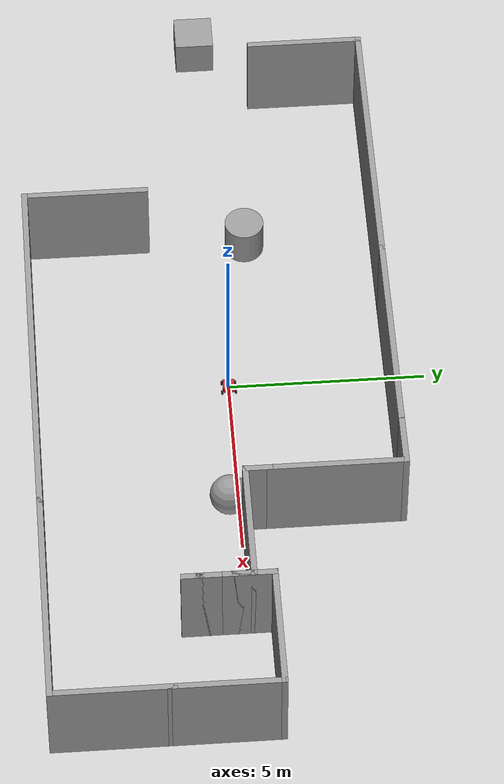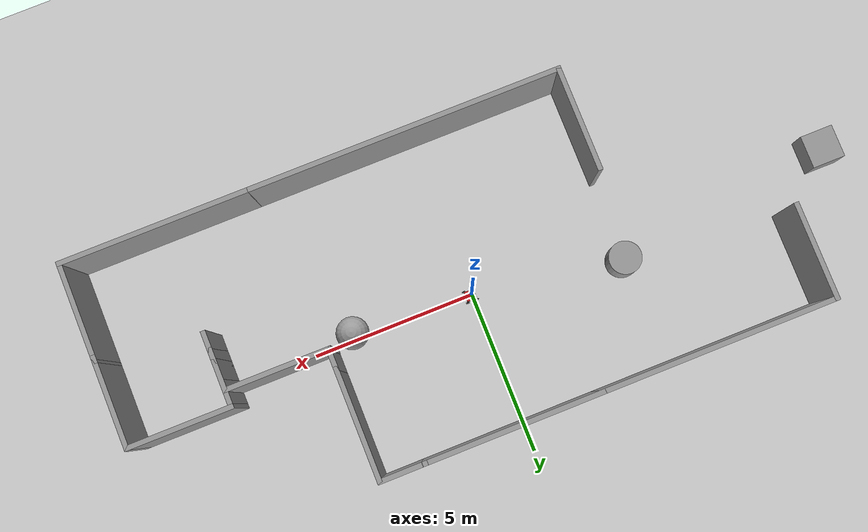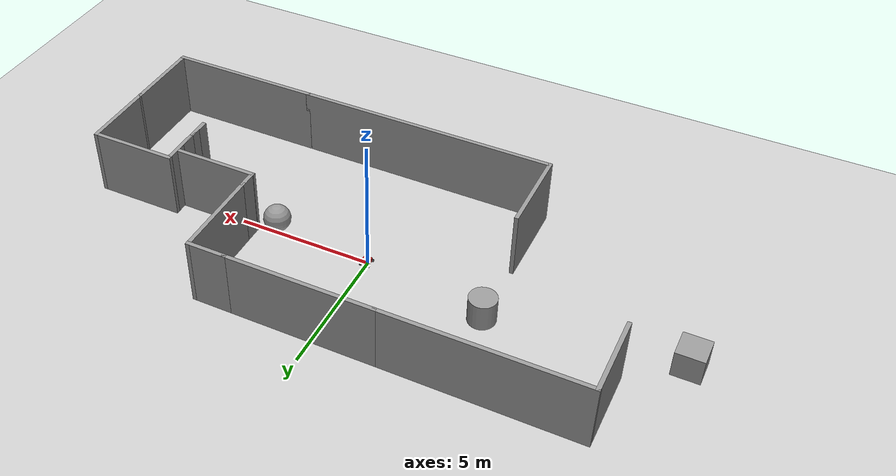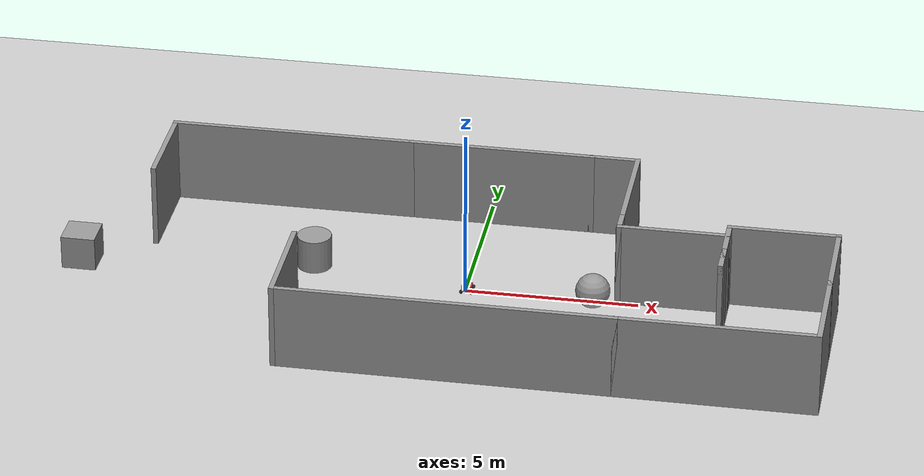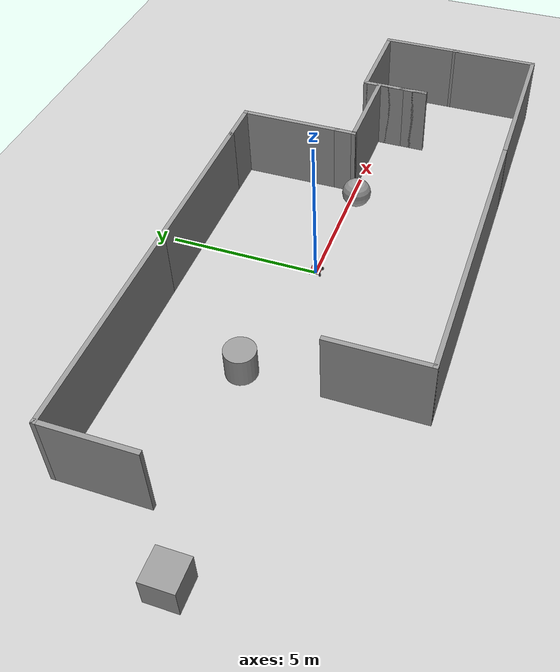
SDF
<sdf version="1.7">
 <world name="default">
  <light name="sun" type="directional">
   <pose>0 0 10 0 -0 0</pose>
   <diffuse>0.8 0.8 0.8 1</diffuse>
   <specular>0.2 0.2 0.2 1</specular>
   <attenuation>
    <range>1000</range>
    <constant>0.9</constant>
    <linear>0.01</linear>
    <quadratic>0.001</quadratic>
   </attenuation>
   <direction>-0.5 0.1 -0.9</direction>
   <spot><inner_angle>0</inner_angle><outer_angle>0</outer_angle><falloff>0</falloff></spot>
  </light>
  <model name="ground_plane">
   <static>1</static>
   <link name="link">
    <collision name="collision">
     <geometry><plane><normal>0 0 1</normal><size>100 100</size></plane></geometry>
     <surface>
      <contact><collide_bitmask>65535</collide_bitmask></contact>
      <friction><ode><mu>100</mu><mu2>50</mu2></ode></friction>
     </surface>
    </collision>
    <visual name="visual">
     <cast_shadows>0</cast_shadows>
     <geometry><plane><normal>0 0 1</normal><size>100 100</size></plane></geometry>
     <material>
      <script><uri>file://media/materials/scripts/gazebo.material</uri><name>Gazebo/Grey</name></script>
     </material>
    </visual>
   </link>
  </model>
  <gravity>0 0 -9.8</gravity>
  <magnetic_field>6e-06 2.3e-05 -4.2e-05</magnetic_field>
  <atmosphere type="adiabatic"/>
  <physics type="ode">
   <max_step_size>0.001</max_step_size>
   <real_time_factor>1</real_time_factor>
   <real_time_update_rate>1000</real_time_update_rate>
  </physics>
  <scene><ambient>0.4 0.4 0.4 1</ambient><background>0.7 0.7 0.7 1</background><shadows>1</shadows></scene>
  <audio><device>default</device></audio>
  <spherical_coordinates>
   <surface_model>EARTH_WGS84</surface_model>
   <latitude_deg>0</latitude_deg>
   <longitude_deg>0</longitude_deg>
   <elevation>0</elevation>
   <heading_deg>0</heading_deg>
  </spherical_coordinates>
  <model name="BOTX">
   <link name="base_link">
    <inertial>
     <pose>0.08125 0 0.06875 0 -0 0</pose>
     <mass>0.8</mass>
     <inertia>
      <ixx>0.0131337</ixx>
      <ixy>0</ixy>
      <ixz>0.00259375</ixz>
      <iyy>0.0110758</iyy>
      <iyz>-1.39278e-20</iyz>
      <izz>0.0178704</izz>
     </inertia>
    </inertial>
    <collision name="base_link_fixed_joint_lump__chassis_collision">
     <pose>0.05 0 0.075 0 -0 0</pose>
     <geometry><box><size>0.3 0.3 0.15</size></box></geometry>
    </collision>
    <collision name="base_link_fixed_joint_lump__laser_frame_collision_1">
     <pose>0 0 0.175 0 -0 0</pose>
     <geometry><cylinder><length>0.04</length><radius>0.05</radius></cylinder></geometry>
    </collision>
    <collision name="base_link_fixed_joint_lump__l1_collision_2">
     <pose>0.2 0.175 0 -1.5708 0 0</pose>
     <geometry><cylinder><length>0.04</length><radius>0.05</radius></cylinder></geometry>
     <surface><friction><ode><mu>0.001</mu><mu2>0.001</mu2></ode></friction></surface>
    </collision>
    <collision name="base_link_fixed_joint_lump__r1_collision_3">
     <pose>0.2 -0.175 0 1.5708 -0 0</pose>
     <geometry><cylinder><length>0.04</length><radius>0.05</radius></cylinder></geometry>
     <surface><friction><ode><mu>0.001</mu><mu2>0.001</mu2></ode></friction></surface>
    </collision>
    <visual name="base_link_fixed_joint_lump__chassis_visual">
     <pose>0.05 0 0.075 0 -0 0</pose>
     <geometry><box><size>0.3 0.3 0.15</size></box></geometry>
     <material>
      <script><name>Gazebo/Red</name><uri>file://media/materials/scripts/gazebo.material</uri></script>
     </material>
    </visual>
    <visual name="base_link_fixed_joint_lump__camera_link_visual_1">
     <pose>0.205 0 0.08 0 -0 0</pose>
     <geometry><box><size>0.01 0.03 0.03</size></box></geometry>
     <material>
      <script><name>Gazebo/Blue</name><uri>file://media/materials/scripts/gazebo.material</uri></script>
     </material>
    </visual>
    <visual name="base_link_fixed_joint_lump__laser_frame_visual_2">
     <pose>0 0 0.175 0 -0 0</pose>
     <geometry><cylinder><length>0.04</length><radius>0.05</radius></cylinder></geometry>
     <material>
      <script><name>Gazebo/Red</name><uri>file://media/materials/scripts/gazebo.material</uri></script>
     </material>
    </visual>
    <visual name="base_link_fixed_joint_lump__l1_visual_3">
     <pose>0.2 0.175 0 -1.5708 0 0</pose>
     <geometry><cylinder><length>0.04</length><radius>0.05</radius></cylinder></geometry>
     <material>
      <script><name>Gazebo/Black</name><uri>file://media/materials/scripts/gazebo.material</uri></script>
     </material>
    </visual>
    <visual name="base_link_fixed_joint_lump__r1_visual_4">
     <pose>0.2 -0.175 0 1.5708 -0 0</pose>
     <geometry><cylinder><length>0.04</length><radius>0.05</radius></cylinder></geometry>
     <material>
      <script><name>Gazebo/Black</name><uri>file://media/materials/scripts/gazebo.material</uri></script>
     </material>
    </visual>
    <sensor name="camera" type="depth">
     <visualize>1</visualize>
     <update_rate>10</update_rate>
     <camera>
      <horizontal_fov>1.089</horizontal_fov>
      <image><format>B8R8G8</format><width>640</width><height>480</height></image>
      <clip><near>0.05</near><far>8</far></clip>
     </camera>
     <plugin name="camera_controller" filename="libgazebo_ros_camera.so">
      <frame_name>camera_link_optical</frame_name>
      <min_depth>0.1</min_depth>
      <max_depth>100.0</max_depth>
     </plugin>
     <pose>0.205 0 0.08 0 -0 0</pose>
    </sensor>
    <sensor name="laser" type="ray">
     <visualize>1</visualize>
     <update_rate>10</update_rate>
     <ray>
      <scan>
       <horizontal>
        <samples>360</samples>
        <min_angle>-3.14</min_angle>
        <max_angle>3.14</max_angle>
        <resolution>1</resolution>
       </horizontal>
       <vertical><samples>1</samples><min_angle>0</min_angle><max_angle>0</max_angle></vertical>
      </scan>
      <range><min>0.3</min><max>12</max></range>
     </ray>
     <plugin name="laser_controller" filename="libgazebo_ros_ray_sensor.so">
      <ros><argument>~/out:=scan</argument></ros>
      <output_type>sensor_msgs/LaserScan</output_type>
      <frame_name>laser_frame</frame_name>
     </plugin>
     <pose>0 0 0.175 0 -0 0</pose>
    </sensor>
   </link>
   <joint name="lw2" type="revolute">
    <pose relative_to="base_link">-0.1 0.175 0 1.5708 -0 0</pose>
    <parent>base_link</parent>
    <child>l2</child>
    <axis>
     <xyz>0 0 -1</xyz>
     <limit><lower>-1e+16</lower><upper>1e+16</upper></limit>
     <dynamics><spring_reference>0</spring_reference><spring_stiffness>0</spring_stiffness></dynamics>
    </axis>
   </joint>
   <link name="l2">
    <pose relative_to="lw2">0 0 0 0 -0 0</pose>
    <inertial>
     <mass>0.1</mass>
     <inertia>
      <ixx>7.58333e-05</ixx>
      <ixy>0</ixy>
      <ixz>0</ixz>
      <iyy>7.58333e-05</iyy>
      <iyz>0</iyz>
      <izz>0.000125</izz>
     </inertia>
    </inertial>
    <collision name="l2_collision">
     <geometry><cylinder><length>0.04</length><radius>0.05</radius></cylinder></geometry>
    </collision>
    <visual name="l2_visual">
     <geometry><cylinder><length>0.04</length><radius>0.05</radius></cylinder></geometry>
     <material>
      <script><name>Gazebo/Black</name><uri>file://media/materials/scripts/gazebo.material</uri></script>
     </material>
    </visual>
   </link>
   <joint name="rw2" type="revolute">
    <pose relative_to="base_link">-0.1 -0.175 0 1.5708 -0 0</pose>
    <parent>base_link</parent>
    <child>r2</child>
    <axis>
     <xyz>0 0 2</xyz>
     <limit><lower>-1e+16</lower><upper>1e+16</upper></limit>
     <dynamics><spring_reference>0</spring_reference><spring_stiffness>0</spring_stiffness></dynamics>
    </axis>
   </joint>
   <link name="r2">
    <pose relative_to="rw2">0 0 0 0 -0 0</pose>
    <inertial>
     <mass>0.1</mass>
     <inertia>
      <ixx>7.58333e-05</ixx>
      <ixy>0</ixy>
      <ixz>0</ixz>
      <iyy>7.58333e-05</iyy>
      <iyz>0</iyz>
      <izz>0.000125</izz>
     </inertia>
    </inertial>
    <collision name="r2_collision">
     <geometry><cylinder><length>0.04</length><radius>0.05</radius></cylinder></geometry>
    </collision>
    <visual name="r2_visual">
     <geometry><cylinder><length>0.04</length><radius>0.05</radius></cylinder></geometry>
     <material>
      <script><name>Gazebo/Black</name><uri>file://media/materials/scripts/gazebo.material</uri></script>
     </material>
    </visual>
   </link>
   <static>0</static>
   <plugin name="diff_drive" filename="libgazebo_ros_diff_drive.so">
    <left_joint>lw2</left_joint>
    <right_joint>rw2</right_joint>
    <wheel_seperation>0.35</wheel_seperation>
    <wheel_diameter>0.1</wheel_diameter>
    <max_wheel_torque>200</max_wheel_torque>
    <max_wheel_acceleration>10.0</max_wheel_acceleration>
    <odometry_frame>odom</odometry_frame>
    <robot_base_frame>base_link</robot_base_frame>
    <publish_odom>1</publish_odom>
    <publish_odom_tf>1</publish_odom_tf>
    <publish_wheel_tf>1</publish_wheel_tf>
   </plugin>
   <pose>-0.000544 -2.6e-05 0.05 0 1e-06 -0.001602</pose>
  </model>
  <model name="building_2">
   <pose>0.595213 -0.433653 0 0 -0 0</pose>
   <link name="Wall_0">
    <collision name="Wall_0_Collision">
     <geometry><box><size>3.25 0.15 2.5</size></box></geometry>
     <pose>0 0 1.25 0 -0 0</pose>
    </collision>
    <visual name="Wall_0_Visual">
     <pose>0 0 1.25 0 -0 0</pose>
     <geometry><box><size>3.25 0.15 2.5</size></box></geometry>
     <material>
      <script><uri>file://media/materials/scripts/gazebo.material</uri><name>Gazebo/Grey</name></script>
      <ambient>1 1 1 1</ambient>
     </material>
     <meta><layer>0</layer></meta>
    </visual>
    <pose>-5.21 -2.95 0 0 -0 -1.5708</pose>
   </link>
   <link name="Wall_1">
    <collision name="Wall_1_Collision">
     <geometry><box><size>9.75 0.15 2.5</size></box></geometry>
     <pose>0 0 1.25 0 -0 0</pose>
    </collision>
    <visual name="Wall_1_Visual">
     <pose>0 0 1.25 0 -0 0</pose>
     <geometry><box><size>9.75 0.15 2.5</size></box></geometry>
     <material>
      <script><uri>file://media/materials/scripts/gazebo.material</uri><name>Gazebo/Grey</name></script>
      <ambient>1 1 1 1</ambient>
     </material>
     <meta><layer>0</layer></meta>
    </visual>
    <pose>-0.41 -4.5 0 0 -0 0</pose>
   </link>
   <link name="Wall_10">
    <collision name="Wall_10_Collision">
     <geometry><box><size>1 0.15 2.5</size></box></geometry>
     <pose>0 0 1.25 0 -0 0</pose>
    </collision>
    <visual name="Wall_10_Visual">
     <pose>0 0 1.25 0 -0 0</pose>
     <geometry><box><size>1 0.15 2.5</size></box></geometry>
     <material>
      <script><uri>file://media/materials/scripts/gazebo.material</uri><name>Gazebo/Grey</name></script>
      <ambient>1 1 1 1</ambient>
     </material>
     <meta><layer>0</layer></meta>
    </visual>
    <pose>6.89 -0.725 0 0 -0 1.5708</pose>
   </link>
   <link name="Wall_11">
    <collision name="Wall_11_Collision">
     <geometry><box><size>1 0.15 2.5</size></box></geometry>
     <pose>0 0 1.25 0 -0 0</pose>
    </collision>
    <visual name="Wall_11_Visual">
     <pose>0 0 1.25 0 -0 0</pose>
     <geometry><box><size>1 0.15 2.5</size></box></geometry>
     <material>
      <script><uri>file://media/materials/scripts/gazebo.material</uri><name>Gazebo/Grey</name></script>
      <ambient>1 1 1 1</ambient>
     </material>
     <meta><layer>0</layer></meta>
    </visual>
    <pose>6.89 0.125 0 0 -0 1.5708</pose>
   </link>
   <link name="Wall_12">
    <collision name="Wall_12_Collision">
     <geometry><box><size>3.25 0.15 2.5</size></box></geometry>
     <pose>0 0 1.25 0 -0 0</pose>
    </collision>
    <visual name="Wall_12_Visual">
     <pose>0 0 1.25 0 -0 0</pose>
     <geometry><box><size>3.25 0.15 2.5</size></box></geometry>
     <material>
      <script><uri>file://media/materials/scripts/gazebo.material</uri><name>Gazebo/Grey</name></script>
      <ambient>1 1 1 1</ambient>
     </material>
     <meta><layer>0</layer></meta>
    </visual>
    <pose>5.34 0.55 0 0 -0 3.14159</pose>
   </link>
   <link name="Wall_13">
    <collision name="Wall_13_Collision">
     <geometry><box><size>0.16 0.15 2.5</size></box></geometry>
     <pose>0 0 1.25 0 -0 0</pose>
    </collision>
    <visual name="Wall_13_Visual">
     <pose>0 0 1.25 0 -0 0</pose>
     <geometry><box><size>0.16 0.15 2.5</size></box></geometry>
     <material>
      <script><uri>file://media/materials/scripts/gazebo.material</uri><name>Gazebo/Grey</name></script>
      <ambient>1 1 1 1</ambient>
     </material>
     <meta><layer>0</layer></meta>
    </visual>
    <pose>3.795 0.55 0 0 -0 0</pose>
   </link>
   <link name="Wall_14">
    <collision name="Wall_14_Collision">
     <geometry><box><size>0.75 0.15 2.5</size></box></geometry>
     <pose>0 0 1.25 0 -0 0</pose>
    </collision>
    <visual name="Wall_14_Visual">
     <pose>0 0 1.25 0 -0 0</pose>
     <geometry><box><size>0.75 0.15 2.5</size></box></geometry>
     <material>
      <script><uri>file://media/materials/scripts/gazebo.material</uri><name>Gazebo/Grey</name></script>
      <ambient>1 1 1 1</ambient>
     </material>
     <meta><layer>0</layer></meta>
    </visual>
    <pose>3.8 0.85 0 0 -0 1.5708</pose>
   </link>
   <link name="Wall_15">
    <collision name="Wall_15_Collision">
     <geometry><box><size>3.5 0.15 2.5</size></box></geometry>
     <pose>0 0 1.25 0 -0 0</pose>
    </collision>
    <visual name="Wall_15_Visual">
     <pose>0 0 1.25 0 -0 0</pose>
     <geometry><box><size>3.5 0.15 2.5</size></box></geometry>
     <material>
      <script><uri>file://media/materials/scripts/gazebo.material</uri><name>Gazebo/Grey</name></script>
      <ambient>1 1 1 1</ambient>
     </material>
     <meta><layer>0</layer></meta>
    </visual>
    <pose>3.8 2.825 0 0 -0 1.5708</pose>
   </link>
   <link name="Wall_16">
    <collision name="Wall_16_Collision">
     <geometry><box><size>1.5 0.15 2.5</size></box></geometry>
     <pose>0 0 1.25 0 -0 0</pose>
    </collision>
    <visual name="Wall_16_Visual">
     <pose>0 0 1.25 0 -0 0</pose>
     <geometry><box><size>1.5 0.15 2.5</size></box></geometry>
     <material>
      <script><uri>file://media/materials/scripts/gazebo.material</uri><name>Gazebo/Grey</name></script>
      <ambient>1 1 1 1</ambient>
     </material>
     <meta><layer>0</layer></meta>
    </visual>
    <pose>3.125 4.5 0 0 -0 3.14159</pose>
   </link>
   <link name="Wall_17">
    <collision name="Wall_17_Collision">
     <geometry><box><size>0.15 0.15 2.5</size></box></geometry>
     <pose>0 0 1.25 0 -0 0</pose>
    </collision>
    <visual name="Wall_17_Visual">
     <pose>0 0 1.25 0 -0 0</pose>
     <geometry><box><size>0.15 0.15 2.5</size></box></geometry>
     <material>
      <script><uri>file://media/materials/scripts/gazebo.material</uri><name>Gazebo/Grey</name></script>
      <ambient>1 1 1 1</ambient>
     </material>
     <meta><layer>0</layer></meta>
    </visual>
    <pose>2.45 4.5 0 0 -0 0</pose>
   </link>
   <link name="Wall_18">
    <collision name="Wall_18_Collision">
     <geometry><box><size>0.16 0.15 2.5</size></box></geometry>
     <pose>0 0 1.25 0 -0 0</pose>
    </collision>
    <visual name="Wall_18_Visual">
     <pose>0 0 1.25 0 -0 0</pose>
     <geometry><box><size>0.16 0.15 2.5</size></box></geometry>
     <material>
      <script><uri>file://media/materials/scripts/gazebo.material</uri><name>Gazebo/Grey</name></script>
      <ambient>1 1 1 1</ambient>
     </material>
     <meta><layer>0</layer></meta>
    </visual>
    <pose>2.455 4.5 0 0 -0 0</pose>
   </link>
   <link name="Wall_19">
    <collision name="Wall_19_Collision">
     <geometry><box><size>5.5 0.15 2.5</size></box></geometry>
     <pose>0 0 1.25 0 -0 0</pose>
    </collision>
    <visual name="Wall_19_Visual">
     <pose>0 0 1.25 0 -0 0</pose>
     <geometry><box><size>5.5 0.15 2.5</size></box></geometry>
     <material>
      <script><uri>file://media/materials/scripts/gazebo.material</uri><name>Gazebo/Grey</name></script>
      <ambient>1 1 1 1</ambient>
     </material>
     <meta><layer>0</layer></meta>
    </visual>
    <pose>-0.215 4.5 0 0 -0 3.14159</pose>
   </link>
   <link name="Wall_2">
    <collision name="Wall_2_Collision">
     <geometry><box><size>0.15 0.15 2.5</size></box></geometry>
     <pose>0 0 1.25 0 -0 0</pose>
    </collision>
    <visual name="Wall_2_Visual">
     <pose>0 0 1.25 0 -0 0</pose>
     <geometry><box><size>0.15 0.15 2.5</size></box></geometry>
     <material>
      <script><uri>file://media/materials/scripts/gazebo.material</uri><name>Gazebo/Grey</name></script>
      <ambient>1 1 1 1</ambient>
     </material>
     <meta><layer>0</layer></meta>
    </visual>
    <pose>4.39 -4.5 0 0 -0 0</pose>
   </link>
   <link name="Wall_20">
    <collision name="Wall_20_Collision">
     <geometry><box><size>7.25 0.15 2.5</size></box></geometry>
     <pose>0 0 1.25 0 -0 0</pose>
    </collision>
    <visual name="Wall_20_Visual">
     <pose>0 0 1.25 0 -0 0</pose>
     <geometry><box><size>7.25 0.15 2.5</size></box></geometry>
     <material>
      <script><uri>file://media/materials/scripts/gazebo.material</uri><name>Gazebo/Grey</name></script>
      <ambient>1 1 1 1</ambient>
     </material>
     <meta><layer>0</layer></meta>
    </visual>
    <pose>-6.44 4.5 0 0 -0 3.14159</pose>
   </link>
   <link name="Wall_21">
    <collision name="Wall_21_Collision">
     <geometry><box><size>3 0.15 2.5</size></box></geometry>
     <pose>0 0 1.25 0 -0 0</pose>
    </collision>
    <visual name="Wall_21_Visual">
     <pose>0 0 1.25 0 -0 0</pose>
     <geometry><box><size>3 0.15 2.5</size></box></geometry>
     <material>
      <script><uri>file://media/materials/scripts/gazebo.material</uri><name>Gazebo/Grey</name></script>
      <ambient>1 1 1 1</ambient>
     </material>
     <meta><layer>0</layer></meta>
    </visual>
    <pose>-9.99 3.075 0 0 -0 -1.5708</pose>
   </link>
   <link name="Wall_3">
    <collision name="Wall_3_Collision">
     <geometry><box><size>5.75 0.15 2.5</size></box></geometry>
     <pose>0 0 1.25 0 -0 0</pose>
    </collision>
    <visual name="Wall_3_Visual">
     <pose>0 0 1.25 0 -0 0</pose>
     <geometry><box><size>5.75 0.15 2.5</size></box></geometry>
     <material>
      <script><uri>file://media/materials/scripts/gazebo.material</uri><name>Gazebo/Grey</name></script>
      <ambient>1 1 1 1</ambient>
     </material>
     <meta><layer>0</layer></meta>
    </visual>
    <pose>7.19 -4.5 0 0 -0 0</pose>
   </link>
   <link name="Wall_4">
    <collision name="Wall_4_Collision">
     <geometry><box><size>3 0.15 2.5</size></box></geometry>
     <pose>0 0 1.25 0 -0 0</pose>
    </collision>
    <visual name="Wall_4_Visual">
     <pose>0 0 1.25 0 -0 0</pose>
     <geometry><box><size>3 0.15 2.5</size></box></geometry>
     <material>
      <script><uri>file://media/materials/scripts/gazebo.material</uri><name>Gazebo/Grey</name></script>
      <ambient>1 1 1 1</ambient>
     </material>
     <meta><layer>0</layer></meta>
    </visual>
    <pose>9.99 -3.075 0 0 -0 1.5708</pose>
   </link>
   <link name="Wall_5">
    <collision name="Wall_5_Collision">
     <geometry><box><size>0.25 0.15 2.5</size></box></geometry>
     <pose>0 0 1.25 0 -0 0</pose>
    </collision>
    <visual name="Wall_5_Visual">
     <pose>0 0 1.25 0 -0 0</pose>
     <geometry><box><size>0.25 0.15 2.5</size></box></geometry>
     <material>
      <script><uri>file://media/materials/scripts/gazebo.material</uri><name>Gazebo/Grey</name></script>
      <ambient>1 1 1 1</ambient>
     </material>
     <meta><layer>0</layer></meta>
    </visual>
    <pose>9.99 -1.6 0 0 -0 1.5708</pose>
   </link>
   <link name="Wall_6">
    <collision name="Wall_6_Collision">
     <geometry><box><size>2.75 0.15 2.5</size></box></geometry>
     <pose>0 0 1.25 0 -0 0</pose>
    </collision>
    <visual name="Wall_6_Visual">
     <pose>0 0 1.25 0 -0 0</pose>
     <geometry><box><size>2.75 0.15 2.5</size></box></geometry>
     <material>
      <script><uri>file://media/materials/scripts/gazebo.material</uri><name>Gazebo/Grey</name></script>
      <ambient>1 1 1 1</ambient>
     </material>
     <meta><layer>0</layer></meta>
    </visual>
    <pose>9.99 -0.25 0 0 -0 1.5708</pose>
   </link>
   <link name="Wall_7">
    <collision name="Wall_7_Collision">
     <geometry><box><size>3.25 0.15 2.5</size></box></geometry>
     <pose>0 0 1.25 0 -0 0</pose>
    </collision>
    <visual name="Wall_7_Visual">
     <pose>0 0 1.25 0 -0 0</pose>
     <geometry><box><size>3.25 0.15 2.5</size></box></geometry>
     <material>
      <script><uri>file://media/materials/scripts/gazebo.material</uri><name>Gazebo/Grey</name></script>
      <ambient>1 1 1 1</ambient>
     </material>
     <meta><layer>0</layer></meta>
    </visual>
    <pose>8.44 1.05 0 0 -0 3.14159</pose>
   </link>
   <link name="Wall_8">
    <collision name="Wall_8_Collision">
     <geometry><box><size>1.5 0.15 2.5</size></box></geometry>
     <pose>0 0 1.25 0 -0 0</pose>
    </collision>
    <visual name="Wall_8_Visual">
     <pose>0 0 1.25 0 -0 0</pose>
     <geometry><box><size>1.5 0.15 2.5</size></box></geometry>
     <material>
      <script><uri>file://media/materials/scripts/gazebo.material</uri><name>Gazebo/Grey</name></script>
      <ambient>1 1 1 1</ambient>
     </material>
     <meta><layer>0</layer></meta>
    </visual>
    <pose>6.89 0.375 0 0 -0 -1.5708</pose>
   </link>
   <link name="Wall_9">
    <collision name="Wall_9_Collision">
     <geometry><box><size>1 0.15 2.5</size></box></geometry>
     <pose>0 0 1.25 0 -0 0</pose>
    </collision>
    <visual name="Wall_9_Visual">
     <pose>0 0 1.25 0 -0 0</pose>
     <geometry><box><size>1 0.15 2.5</size></box></geometry>
     <material>
      <script><uri>file://media/materials/scripts/gazebo.material</uri><name>Gazebo/Grey</name></script>
      <ambient>1 1 1 1</ambient>
     </material>
     <meta><layer>0</layer></meta>
    </visual>
    <pose>6.89 -0.725 0 0 -0 -1.5708</pose>
   </link>
   <static>1</static>
  </model>
  <model name="unit_cylinder">
   <pose>-4.55876 0.714117 0.499993 -3e-06 -4e-06 -0</pose>
   <link name="link">
    <inertial>
     <mass>1</mass>
     <inertia><ixx>0.145833</ixx><ixy>0</ixy><ixz>0</ixz><iyy>0.145833</iyy><iyz>0</iyz><izz>0.125</izz></inertia>
    </inertial>
    <collision name="collision">
     <geometry><cylinder><radius>0.5</radius><length>1</length></cylinder></geometry>
    </collision>
    <visual name="visual">
     <geometry><cylinder><radius>0.5</radius><length>1</length></cylinder></geometry>
     <material>
      <script><name>Gazebo/Grey</name><uri>file://media/materials/scripts/gazebo.material</uri></script>
     </material>
    </visual>
   </link>
  </model>
  <model name="unit_sphere">
   <pose>3.72135 -0.221963 0.5 0 -0 0</pose>
   <link name="link">
    <inertial>
     <mass>1</mass>
     <inertia><ixx>0.1</ixx><ixy>0</ixy><ixz>0</ixz><iyy>0.1</iyy><iyz>0</iyz><izz>0.1</izz></inertia>
    </inertial>
    <collision name="collision"><geometry><sphere><radius>0.5</radius></sphere></geometry></collision>
    <visual name="visual">
     <geometry><sphere><radius>0.5</radius></sphere></geometry>
     <material>
      <script><name>Gazebo/Grey</name><uri>file://media/materials/scripts/gazebo.material</uri></script>
     </material>
    </visual>
   </link>
  </model>
  <model name="unit_box">
   <pose>-11.2637 -0.189496 0.5 0 -0 0</pose>
   <link name="link">
    <inertial>
     <mass>1</mass>
     <inertia>
      <ixx>0.166667</ixx>
      <ixy>0</ixy>
      <ixz>0</ixz>
      <iyy>0.166667</iyy>
      <iyz>0</iyz>
      <izz>0.166667</izz>
     </inertia>
    </inertial>
    <collision name="collision"><geometry><box><size>1 1 1</size></box></geometry></collision>
    <visual name="visual">
     <geometry><box><size>1 1 1</size></box></geometry>
     <material>
      <script><name>Gazebo/Grey</name><uri>file://media/materials/scripts/gazebo.material</uri></script>
     </material>
    </visual>
   </link>
  </model>
 </world>
</sdf>
